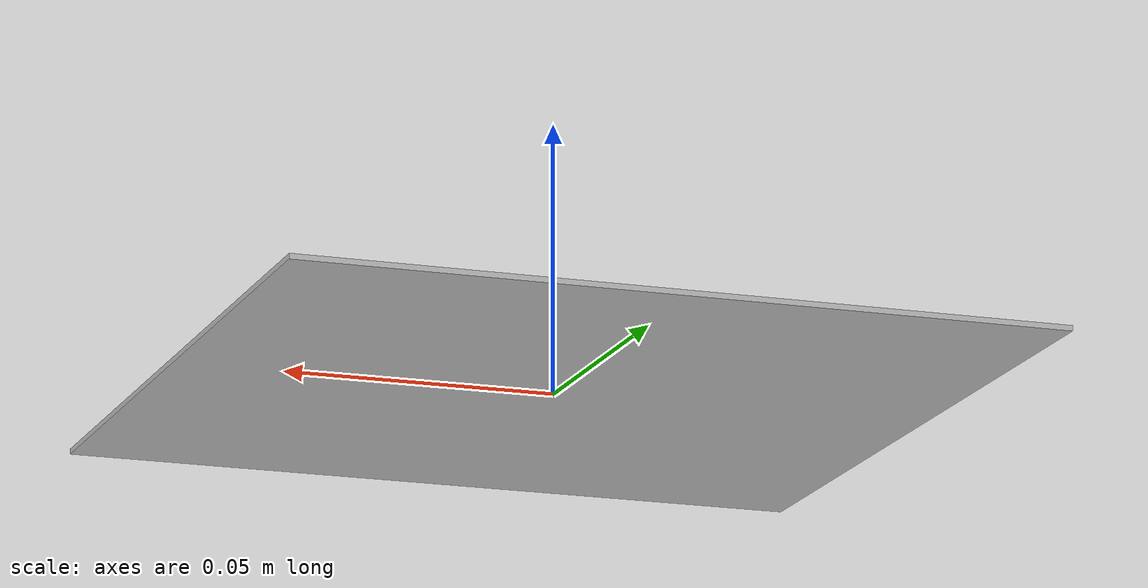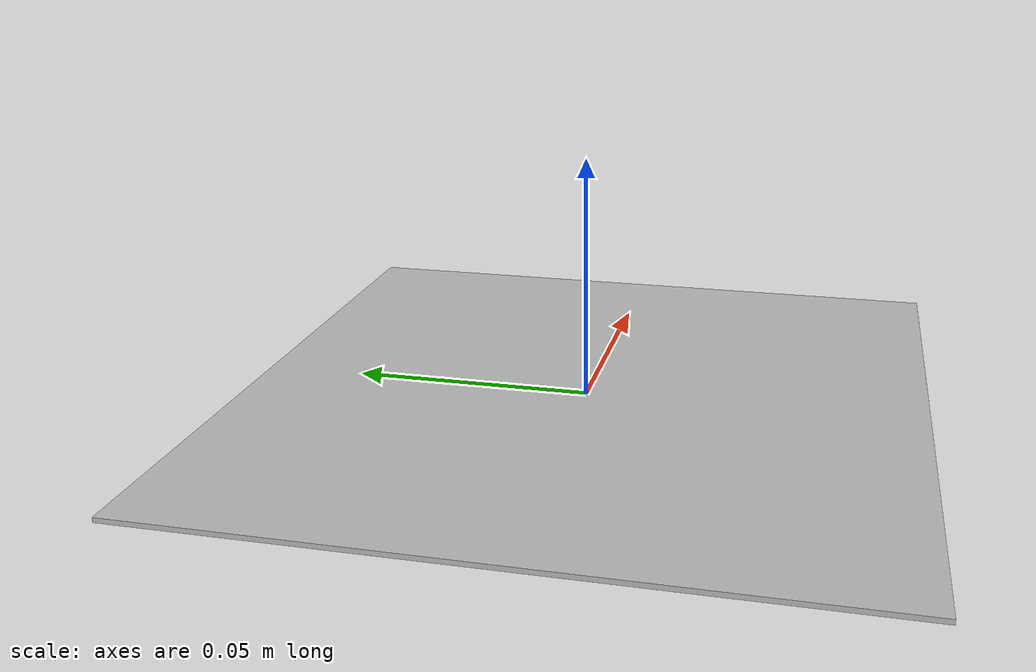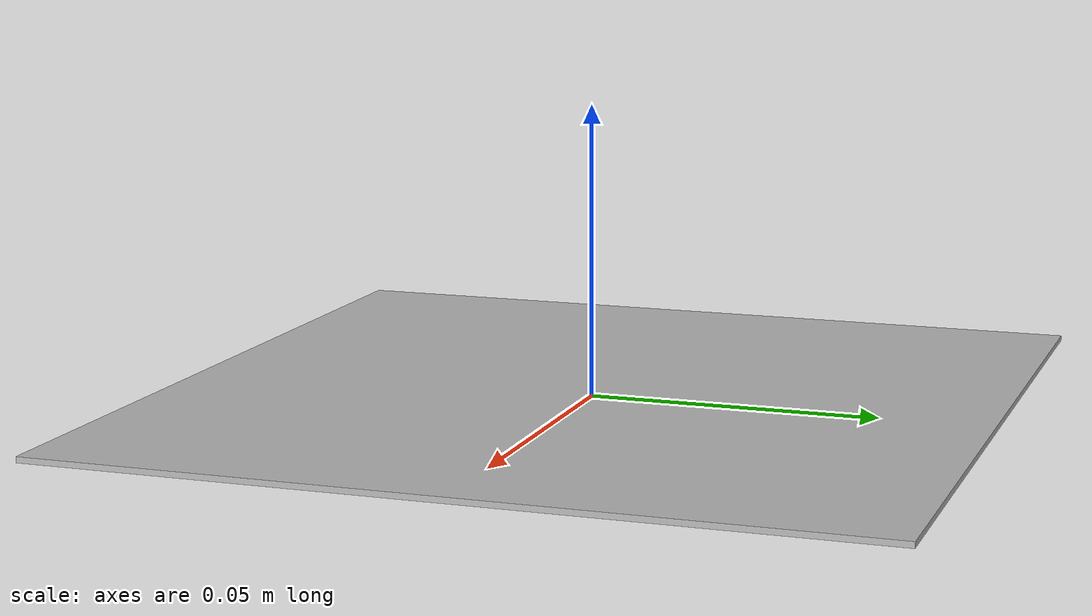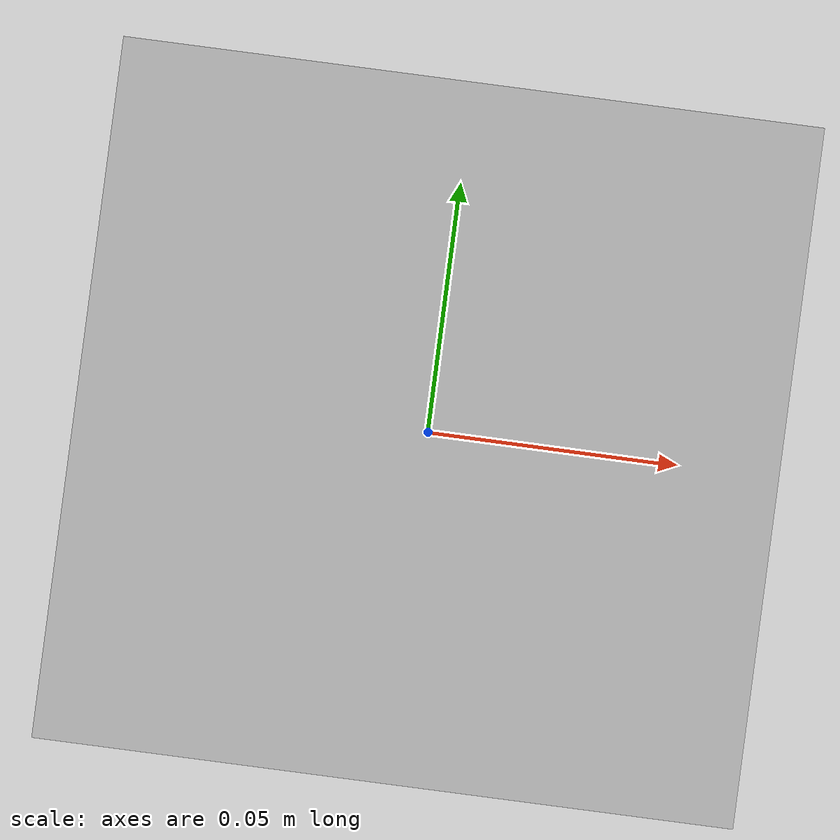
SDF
<sdf version="1.5">
  <model name="Marker ID-4">
    <static>true</static>
    <link name="link">
      <pose>0.0 0.0 0.0005 0.0 0.0 0.0</pose>
      <collision name="collision">
        <geometry>
          <!-- Box or plane geometry is used -->
        <box><size>0.14 0.14 0.001</size></box></geometry>
      </collision>
      <visual name="visual">
        <geometry>
          <!-- Box or plane geometry is used -->
        <box><size>0.14 0.14 0.001</size></box></geometry>
        <material>
          <script>
            <name>marker_id_4</name>
          <uri>model://marker_4/materials/scripts/</uri><uri>model://marker_4/materials/textures/</uri></script>
        </material>
      </visual>
    </link>
  </model>
</sdf>
